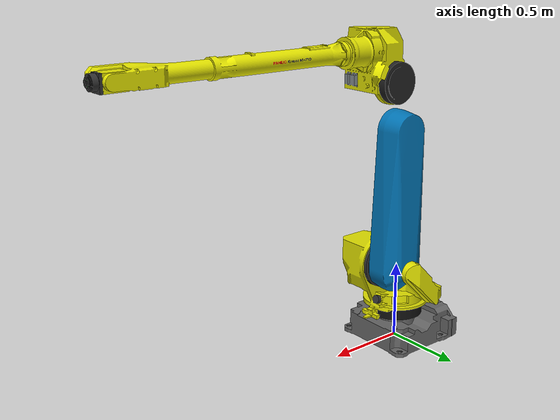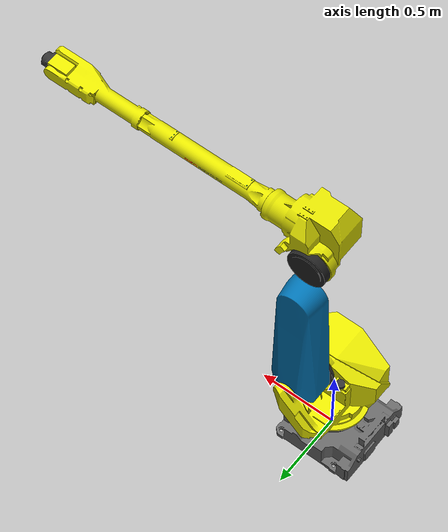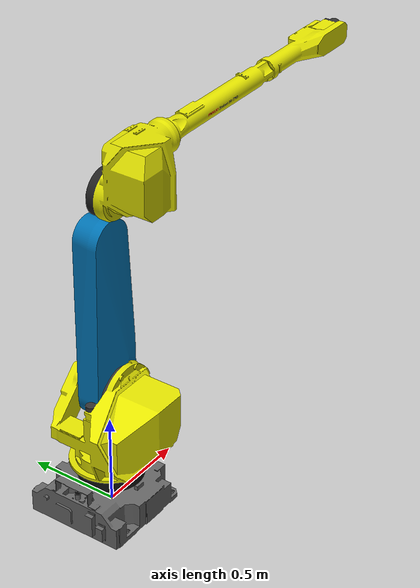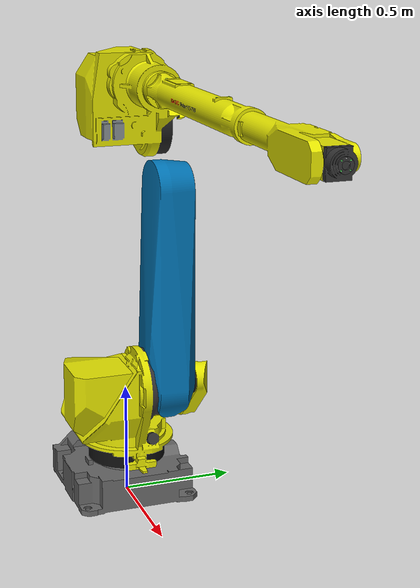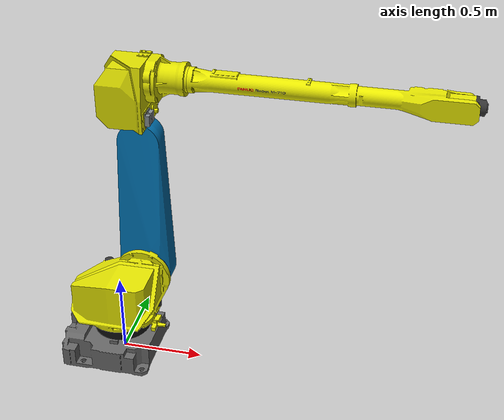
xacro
<?xml version="1.0" ?>
<robot name="m710ic_20l" xmlns:xacro="http://wiki.ros.org/xacro">
  <xacro:include
    filename="$(find fanuc_m710_description)/urdf/m710ic_20l_urdf_macro.xacro"
  />

  <link name="world" />
  <link name="ee_link" />
  <xacro:m710ic_20l parent="world" child="ee_link">
    <origin xyz="0 0 0" rpy="0 0 0" />
  </xacro:m710ic_20l>
</robot>

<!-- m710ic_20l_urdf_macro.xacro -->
<!--
SPDX-FileCopyrightText: 2026, FANUC America Corporation
SPDX-FileCopyrightText: 2026, FANUC CORPORATION
SPDX-License-Identifier: Apache-2.0
-->
<!-- URDF for M-710/20-31C (M-710iC/20L) -->
<robot xmlns:xacro="http://wiki.ros.org/xacro">
  <xacro:macro
    name="m710ic_20l"
    params="prefix=''
            parent
            *origin
            child"
  >

    <xacro:property name="j1_lower_limit" value="${radians(-180)}" />
    <xacro:property name="j2_lower_limit" value="${radians(-90)}" />
    <xacro:property name="j3_lower_limit" value="${radians(-80.5)}" />
    <xacro:property name="j4_lower_limit" value="${radians(-200)}" />
    <xacro:property name="j5_lower_limit" value="${radians(-140)}" />
    <xacro:property name="j6_lower_limit" value="${radians(-450)}" />

    <xacro:property name="j1_upper_limit" value="${radians(180)}" />
    <xacro:property name="j2_upper_limit" value="${radians(135)}" />
    <xacro:property name="j3_upper_limit" value="${radians(205)}" />
    <xacro:property name="j4_upper_limit" value="${radians(200)}" />
    <xacro:property name="j5_upper_limit" value="${radians(140)}" />
    <xacro:property name="j6_upper_limit" value="${radians(450)}" />

    <xacro:property name="j1_effort_limit" value="5000" />
    <xacro:property name="j2_effort_limit" value="10000" />
    <xacro:property name="j3_effort_limit" value="4000" />
    <xacro:property name="j4_effort_limit" value="200" />
    <xacro:property name="j5_effort_limit" value="200" />
    <xacro:property name="j6_effort_limit" value="100" />

    <xacro:property name="j1_velocity_limit" value="${radians(175)}" />
    <xacro:property name="j2_velocity_limit" value="${radians(165)}" />
    <xacro:property name="j3_velocity_limit" value="${radians(180)}" />
    <xacro:property name="j4_velocity_limit" value="${radians(350)}" />
    <xacro:property name="j5_velocity_limit" value="${radians(360)}" />
    <xacro:property name="j6_velocity_limit" value="${radians(600)}" />

    <!-- links -->
    <link name="${prefix}base_link">
      <visual>
        <origin xyz="0 0 0" rpy="0 0 0" />
        <geometry>
          <mesh
            filename="package://fanuc_m710_description/meshes/m710ic_20l/visual/base.dae"
          />
        </geometry>
      </visual>
      <collision>
        <origin xyz="0 0 0" rpy="0 0 0" />
        <geometry>
          <mesh
            filename="package://fanuc_m710_description/meshes/m710ic_20l/collision/base.stl"
          />
        </geometry>
      </collision>
      <inertial>
        <mass value=" 121" />
        <origin xyz="-.0566 -.000891  .119" />
        <inertia
          ixx=" 3.2"
          ixy="-.0136"
          ixz=" .0398"
          iyy=" 3.45"
          iyz="-.0063"
          izz=" 5.39"
        />
      </inertial>
    </link>

    <link name="${prefix}J1_link">
      <visual>
        <origin xyz="0 0 0" rpy="0 0 0" />
        <geometry>
          <mesh
            filename="package://fanuc_m710_description/meshes/m710ic_20l/visual/j1.dae"
          />
        </geometry>
      </visual>
      <collision>
        <origin xyz="0 0 0" rpy="0 0 0" />
        <geometry>
          <mesh
            filename="package://fanuc_m710_description/meshes/m710ic_20l/collision/j1.stl"
          />
        </geometry>
      </collision>
      <inertial>
        <mass value=" 183" />
        <origin xyz=" .0515 -.00696 -.105" />
        <inertia
          ixx=" 6.83"
          ixy="-.304"
          ixz="-.462"
          iyy=" 5.83"
          iyz=" .199"
          izz=" 7.31"
        />
      </inertial>
    </link>

    <link name="${prefix}J2_link">
      <visual>
        <origin xyz="0 0 0" rpy="0 0 0" />
        <geometry>
          <mesh
            filename="package://fanuc_m710_description/meshes/m710ic_20l/visual/j2.dae"
          />
        </geometry>
      </visual>
      <collision>
        <origin xyz="0 0 0" rpy="0 0 0" />
        <geometry>
          <mesh
            filename="package://fanuc_m710_description/meshes/m710ic_20l/collision/j2.stl"
          />
        </geometry>
      </collision>
      <inertial>
        <mass value=" 103" />
        <origin xyz=" .00255  .155  .462" />
        <inertia
          ixx=" 14.2"
          ixy=" .0237"
          ixz=" .016"
          iyy=" 14.5"
          iyz="-.459"
          izz=" .855"
        />
      </inertial>
    </link>

    <link name="${prefix}J3_link">
      <visual>
        <origin xyz="0 0 0" rpy="0 0 0" />
        <geometry>
          <mesh
            filename="package://fanuc_m710_description/meshes/m710ic_20l/visual/j3.dae"
          />
        </geometry>
      </visual>
      <collision>
        <origin xyz="0 0 0" rpy="0 0 0" />
        <geometry>
          <mesh
            filename="package://fanuc_m710_description/meshes/m710ic_20l/collision/j3.stl"
          />
        </geometry>
      </collision>
      <inertial>
        <mass value=" 82.7" />
        <origin xyz=" .0731 -.0312  .113" />
        <inertia
          ixx=" 1.63"
          ixy="-.0732"
          ixz="-.223"
          iyy=" 2"
          iyz=" .0871"
          izz=" 1.77"
        />
      </inertial>
    </link>

    <link name="${prefix}J4_link">
      <visual>
        <origin xyz="0 0 0" rpy="0 0 0" />
        <geometry>
          <mesh
            filename="package://fanuc_m710_description/meshes/m710ic_20l/visual/j4.dae"
          />
        </geometry>
      </visual>
      <collision>
        <origin xyz="0 0 0" rpy="0 0 0" />
        <geometry>
          <mesh
            filename="package://fanuc_m710_description/meshes/m710ic_20l/collision/j4.stl"
          />
        </geometry>
      </collision>
      <inertial>
        <mass value=" 47.1" />
        <origin xyz=" 1.12 -.00605  .000000367" />
        <inertia
          ixx=" .141"
          ixy=" .0701"
          ixz="-.00000499"
          iyy=" 8.67"
          iyz=" .0000000236"
          izz=" 8.7"
        />
      </inertial>
    </link>

    <link name="${prefix}J5_link">
      <visual>
        <origin xyz="0 0 0" rpy="0 0 0" />
        <geometry>
          <mesh
            filename="package://fanuc_m710_description/meshes/m710ic_20l/visual/j5.dae"
          />
        </geometry>
      </visual>
      <collision>
        <origin xyz="0 0 0" rpy="0 0 0" />
        <geometry>
          <mesh
            filename="package://fanuc_m710_description/meshes/m710ic_20l/collision/j5.stl"
          />
        </geometry>
      </collision>
      <inertial>
        <mass value=" 2.84" />
        <origin xyz="-.00319  .00468 -.00437" />
        <inertia
          ixx=" .00408"
          ixy=" .0000884"
          ixz="-.000101"
          iyy=" .00953"
          iyz="-.00000838"
          izz=" .00945"
        />
      </inertial>
    </link>

    <link name="${prefix}J6_link">
      <visual>
        <origin xyz="0 0 0" rpy="0 0 0" />
        <geometry>
          <mesh
            filename="package://fanuc_m710_description/meshes/m710ic_20l/visual/j6.dae"
          />
        </geometry>
      </visual>
      <collision>
        <origin xyz="0 0 0" rpy="0 0 0" />
        <geometry>
          <mesh
            filename="package://fanuc_m710_description/meshes/m710ic_20l/collision/j6.stl"
          />
        </geometry>
      </collision>
      <inertial>
        <mass value=" .0206" />
        <origin xyz=" .097  3.42E-20  2.82E-19" />
        <inertia
          ixx=" .00000642"
          ixy=" 8.81E-21"
          ixz="-3.45E-22"
          iyy=" .00000327"
          iyz="-1.42E-23"
          izz=" .00000327"
        />
      </inertial>
    </link>

    <!-- joints -->
    <joint name="${prefix}J1" type="revolute">
      <origin xyz=" 0  0  .565" rpy="0 0 0" />
      <parent link="${prefix}base_link" />
      <child link="${prefix}J1_link" />
      <axis xyz=" 0  0  1" />
      <limit
        lower="${j1_lower_limit}"
        upper="${j1_upper_limit}"
        effort="${j1_effort_limit}"
        velocity="${j1_velocity_limit}"
      />
    </joint>

    <joint name="${prefix}J2" type="revolute">
      <origin xyz=" .15  0  0" rpy="0 0 0" />
      <parent link="${prefix}J1_link" />
      <child link="${prefix}J2_link" />
      <axis xyz=" 0  1  0" />
      <limit
        lower="${j2_lower_limit}"
        upper="${j2_upper_limit}"
        effort="${j2_effort_limit}"
        velocity="${j2_velocity_limit}"
      />
    </joint>

    <joint name="${prefix}J3" type="revolute">
      <origin xyz=" 0  0  1.15" rpy="0 0 0" />
      <parent link="${prefix}J2_link" />
      <child link="${prefix}J3_link" />
      <axis xyz=" 0 -1  0" />
      <limit
        lower="${j3_lower_limit}"
        upper="${j3_upper_limit}"
        effort="${j3_effort_limit}"
        velocity="${j3_velocity_limit}"
      />
    </joint>

    <joint name="${prefix}J4" type="revolute">
      <origin xyz=" 0  0  .19" rpy="0 0 0" />
      <parent link="${prefix}J3_link" />
      <child link="${prefix}J4_link" />
      <axis xyz="-1  0  0" />
      <limit
        lower="${j4_lower_limit}"
        upper="${j4_upper_limit}"
        effort="${j4_effort_limit}"
        velocity="${j4_velocity_limit}"
      />
    </joint>

    <joint name="${prefix}J5" type="revolute">
      <origin xyz=" 1.8  0  0" rpy="0 0 0" />
      <parent link="${prefix}J4_link" />
      <child link="${prefix}J5_link" />
      <axis xyz=" 0 -1  0" />
      <limit
        lower="${j5_lower_limit}"
        upper="${j5_upper_limit}"
        effort="${j5_effort_limit}"
        velocity="${j5_velocity_limit}"
      />
    </joint>

    <joint name="${prefix}J6" type="revolute">
      <origin xyz=" 0  0  0" rpy="0 0 0" />
      <parent link="${prefix}J5_link" />
      <child link="${prefix}J6_link" />
      <axis xyz="-1  0  0" />
      <limit
        lower="${j6_lower_limit}"
        upper="${j6_upper_limit}"
        effort="${j6_effort_limit}"
        velocity="${j6_velocity_limit}"
      />
    </joint>

    <!-- world coords -->
    <link name="${prefix}wbase" />
    <joint name="${prefix}base_link-wbase" type="fixed">
      <origin xyz=" 0  0  .565" rpy="0 0 0" />
      <parent link="${prefix}base_link" />
      <child link="${prefix}wbase" />
    </joint>

    <!-- flange coords -->
    <link name="${prefix}flange" />
    <joint name="${prefix}J6-flange" type="fixed">
      <origin xyz=" .1  0  0" rpy="0 0 0" />
      <parent link="${prefix}J6_link" />
      <child link="${prefix}flange" />
    </joint>

    <!-- FANUC flange coords -->
    <link name="${prefix}fanuc_flange" />
    <joint name="${prefix}flange-fanuc_flange" type="fixed">
      <origin xyz="0 0 0" rpy="${radians( 180)} ${radians(-90)} ${radians( 0)}" />
      <parent link="${prefix}flange" />
      <child link="${prefix}fanuc_flange" />
    </joint>

    <!-- Attach to parent -->
    <joint name="${prefix}base_joint" type="fixed">
      <xacro:insert_block name="origin" />
      <parent link="${parent}" />
      <child link="${prefix}base_link" />
    </joint>

    <!-- Attach child -->
    <joint name="${prefix}child_joint" type="fixed">
      <origin xyz="0 0 0" rpy="0 0 0" />
      <parent link="${prefix}flange" />
      <child link="${child}" />
    </joint>
  </xacro:macro>
</robot>
